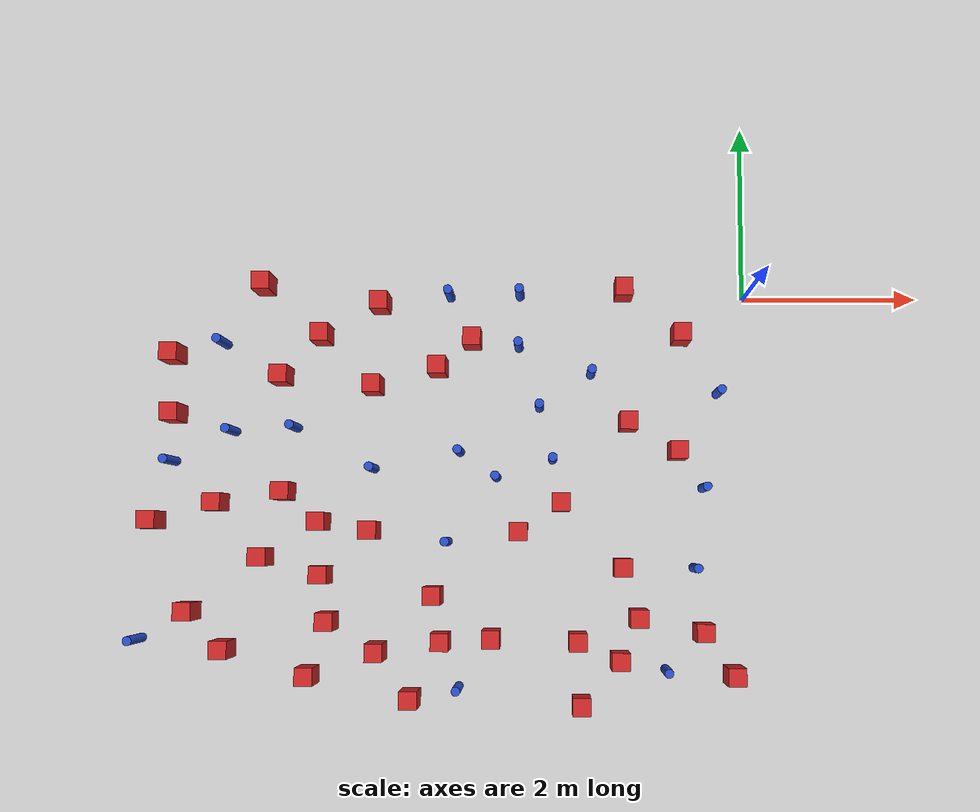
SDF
<sdf version="1.6">
 <world name="default">
  <model name="ground_plane">
   <static>1</static>
   <link name="link">
    <collision name="collision">
     <geometry><plane><normal>0 0 1</normal><size>100 100</size></plane></geometry>
     <surface><friction><ode><mu>100</mu><mu2>50</mu2></ode></friction></surface>
    </collision>
    <visual name="visual">
     <cast_shadows>0</cast_shadows>
     <geometry><plane><normal>0 0 1</normal><size>100 100</size></plane></geometry>
     <material>
      <ambient>1.0 1.0 1.0 1.0</ambient>
      <diffuse>0.8 0.8 0.8 1.0</diffuse>
      <specular>0.01 0.01 0.01 1.000000</specular>
     </material>
    </visual>
   </link>
  </model>
  <model name="NamedLocations">
   <static>true</static>
   <link name="DefaultStart"><pose>8.5 0 0 0 0 3.14</pose></link>
  </model>
  <model name="square_post_obstacle1">
   <static>true</static>
   <pose>-4.81381183244 -0.451501283735 1.91545236811e-07 -7.35059704564e-06 1.12565212e-07 2.39332434364e-05</pose>
   <link name="link">
    <pose>0 0 0.25 0 -0 0</pose>
    <inertial>
     <mass>100</mass>
     <inertia>
      <ixx>0.166667</ixx>
      <ixy>0</ixy>
      <ixz>0</ixz>
      <iyy>0.166667</iyy>
      <iyz>0</iyz>
      <izz>0.166667</izz>
     </inertia>
    </inertial>
    <collision name="collision"><geometry><box><size>.2 .2 .5</size></box></geometry></collision>
    <visual name="visual">
     <geometry><box><size>.2 .2 .5</size></box></geometry>
     <material>
      <script><name>Gazebo/Red</name><uri>file://media/materials/scripts/gazebo.material</uri></script>
     </material>
    </visual>
   </link>
  </model>
  <model name="square_post_obstacle3">
   <static>true</static>
   <pose>-3.5253935339 -3.39183684715 1.91545236811e-07 -7.35059704564e-06 1.12565212e-07 2.39332434364e-05</pose>
   <link name="link">
    <pose>0 0 0.25 0 -0 0</pose>
    <inertial>
     <mass>100</mass>
     <inertia>
      <ixx>0.166667</ixx>
      <ixy>0</ixy>
      <ixz>0</ixz>
      <iyy>0.166667</iyy>
      <iyz>0</iyz>
      <izz>0.166667</izz>
     </inertia>
    </inertial>
    <collision name="collision"><geometry><box><size>.2 .2 .5</size></box></geometry></collision>
    <visual name="visual">
     <geometry><box><size>.2 .2 .5</size></box></geometry>
     <material>
      <script><name>Gazebo/Red</name><uri>file://media/materials/scripts/gazebo.material</uri></script>
     </material>
    </visual>
   </link>
  </model>
  <model name="pole_obstacle12">
   <static>true</static>
   <pose>-5.93683408463 -0.54117805944 7.38925637345e-09 -8.47170692798e-08 1.24976765005e-08 -1.74513093021e-07</pose>
   <link name="link">
    <pose>0 0 0.3 0 -0 0</pose>
    <inertial>
     <mass>1</mass>
     <inertia><ixx>0.145833</ixx><ixy>0</ixy><ixz>0</ixz><iyy>0.145833</iyy><iyz>0</iyz><izz>0.125</izz></inertia>
    </inertial>
    <collision name="collision">
     <geometry><cylinder><radius>0.05</radius><length>.6</length></cylinder></geometry>
    </collision>
    <visual name="visual">
     <geometry><cylinder><radius>0.05</radius><length>.6</length></cylinder></geometry>
     <material>
      <script><name>Gazebo/Blue</name><uri>file://media/materials/scripts/gazebo.material</uri></script>
     </material>
    </visual>
   </link>
  </model>
  <model name="pole_obstacle16">
   <static>true</static>
   <pose>-2.56639658643 0.0287213058173 7.38925637345e-09 -8.47170692793e-08 1.24976764457e-08 -1.74513093039e-07</pose>
   <link name="link">
    <pose>0 0 0.3 0 -0 0</pose>
    <inertial>
     <mass>1</mass>
     <inertia><ixx>0.145833</ixx><ixy>0</ixy><ixz>0</ixz><iyy>0.145833</iyy><iyz>0</iyz><izz>0.125</izz></inertia>
    </inertial>
    <collision name="collision">
     <geometry><cylinder><radius>0.05</radius><length>.6</length></cylinder></geometry>
    </collision>
    <visual name="visual">
     <geometry><cylinder><radius>0.05</radius><length>.6</length></cylinder></geometry>
     <material>
      <script><name>Gazebo/Blue</name><uri>file://media/materials/scripts/gazebo.material</uri></script>
     </material>
    </visual>
   </link>
  </model>
  <model name="square_post_obstacle13">
   <static>true</static>
   <pose>-4.24430106662 -2.66834817036 1.91545236811e-07 -7.35059704564e-06 1.12565212e-07 2.39332434364e-05</pose>
   <link name="link">
    <pose>0 0 0.25 0 -0 0</pose>
    <inertial>
     <mass>100</mass>
     <inertia>
      <ixx>0.166667</ixx>
      <ixy>0</ixy>
      <ixz>0</ixz>
      <iyy>0.166667</iyy>
      <iyz>0</iyz>
      <izz>0.166667</izz>
     </inertia>
    </inertial>
    <collision name="collision"><geometry><box><size>.2 .2 .5</size></box></geometry></collision>
    <visual name="visual">
     <geometry><box><size>.2 .2 .5</size></box></geometry>
     <material>
      <script><name>Gazebo/Red</name><uri>file://media/materials/scripts/gazebo.material</uri></script>
     </material>
    </visual>
   </link>
  </model>
  <model name="pole_obstacle19">
   <static>true</static>
   <pose>-1.75111806579 -0.878984291902 7.38925637345e-09 -8.47170692799e-08 1.24976765075e-08 -1.74513093017e-07</pose>
   <link name="link">
    <pose>0 0 0.3 0 -0 0</pose>
    <inertial>
     <mass>1</mass>
     <inertia><ixx>0.145833</ixx><ixy>0</ixy><ixz>0</ixz><iyy>0.145833</iyy><iyz>0</iyz><izz>0.125</izz></inertia>
    </inertial>
    <collision name="collision">
     <geometry><cylinder><radius>0.05</radius><length>.6</length></cylinder></geometry>
    </collision>
    <visual name="visual">
     <geometry><cylinder><radius>0.05</radius><length>.6</length></cylinder></geometry>
     <material>
      <script><name>Gazebo/Blue</name><uri>file://media/materials/scripts/gazebo.material</uri></script>
     </material>
    </visual>
   </link>
  </model>
  <model name="square_post_obstacle25">
   <static>true</static>
   <pose>-4.2230417161 -1.03013316784 1.91545236811e-07 -7.35059704564e-06 1.12565212e-07 2.39332434364e-05</pose>
   <link name="link">
    <pose>0 0 0.25 0 -0 0</pose>
    <inertial>
     <mass>100</mass>
     <inertia>
      <ixx>0.166667</ixx>
      <ixy>0</ixy>
      <ixz>0</ixz>
      <iyy>0.166667</iyy>
      <iyz>0</iyz>
      <izz>0.166667</izz>
     </inertia>
    </inertial>
    <collision name="collision"><geometry><box><size>.2 .2 .5</size></box></geometry></collision>
    <visual name="visual">
     <geometry><box><size>.2 .2 .5</size></box></geometry>
     <material>
      <script><name>Gazebo/Red</name><uri>file://media/materials/scripts/gazebo.material</uri></script>
     </material>
    </visual>
   </link>
  </model>
  <model name="pole_obstacle38">
   <static>true</static>
   <pose>-3.36488434788 0.0128396563403 7.38925637345e-09 -8.471706928e-08 1.24976765123e-08 -1.74513093015e-07</pose>
   <link name="link">
    <pose>0 0 0.3 0 -0 0</pose>
    <inertial>
     <mass>1</mass>
     <inertia><ixx>0.145833</ixx><ixy>0</ixy><ixz>0</ixz><iyy>0.145833</iyy><iyz>0</iyz><izz>0.125</izz></inertia>
    </inertial>
    <collision name="collision">
     <geometry><cylinder><radius>0.05</radius><length>.6</length></cylinder></geometry>
    </collision>
    <visual name="visual">
     <geometry><cylinder><radius>0.05</radius><length>.6</length></cylinder></geometry>
     <material>
      <script><name>Gazebo/Blue</name><uri>file://media/materials/scripts/gazebo.material</uri></script>
     </material>
    </visual>
   </link>
  </model>
  <model name="square_post_obstacle32">
   <static>true</static>
   <pose>-0.733675001921 -0.444159728703 1.91545236811e-07 -7.35059704564e-06 1.12565212e-07 2.39332434364e-05</pose>
   <link name="link">
    <pose>0 0 0.25 0 -0 0</pose>
    <inertial>
     <mass>100</mass>
     <inertia>
      <ixx>0.166667</ixx>
      <ixy>0</ixy>
      <ixz>0</ixz>
      <iyy>0.166667</iyy>
      <iyz>0</iyz>
      <izz>0.166667</izz>
     </inertia>
    </inertial>
    <collision name="collision"><geometry><box><size>.2 .2 .5</size></box></geometry></collision>
    <visual name="visual">
     <geometry><box><size>.2 .2 .5</size></box></geometry>
     <material>
      <script><name>Gazebo/Red</name><uri>file://media/materials/scripts/gazebo.material</uri></script>
     </material>
    </visual>
   </link>
  </model>
  <model name="square_post_obstacle34">
   <static>true</static>
   <pose>-4.78245445662 -3.16348030652 1.91545236811e-07 -7.35059704564e-06 1.12565212e-07 2.39332434364e-05</pose>
   <link name="link">
    <pose>0 0 0.25 0 -0 0</pose>
    <inertial>
     <mass>100</mass>
     <inertia>
      <ixx>0.166667</ixx>
      <ixy>0</ixy>
      <ixz>0</ixz>
      <iyy>0.166667</iyy>
      <iyz>0</iyz>
      <izz>0.166667</izz>
     </inertia>
    </inertial>
    <collision name="collision"><geometry><box><size>.2 .2 .5</size></box></geometry></collision>
    <visual name="visual">
     <geometry><box><size>.2 .2 .5</size></box></geometry>
     <material>
      <script><name>Gazebo/Red</name><uri>file://media/materials/scripts/gazebo.material</uri></script>
     </material>
    </visual>
   </link>
  </model>
  <model name="pole_obstacle43">
   <static>true</static>
   <pose>-6.82482657903 -3.8784443002 7.38925637345e-09 -8.47170692798e-08 1.24976764937e-08 -1.74513093023e-07</pose>
   <link name="link">
    <pose>0 0 0.3 0 -0 0</pose>
    <inertial>
     <mass>1</mass>
     <inertia><ixx>0.145833</ixx><ixy>0</ixy><ixz>0</ixz><iyy>0.145833</iyy><iyz>0</iyz><izz>0.125</izz></inertia>
    </inertial>
    <collision name="collision">
     <geometry><cylinder><radius>0.05</radius><length>.6</length></cylinder></geometry>
    </collision>
    <visual name="visual">
     <geometry><cylinder><radius>0.05</radius><length>.6</length></cylinder></geometry>
     <material>
      <script><name>Gazebo/Blue</name><uri>file://media/materials/scripts/gazebo.material</uri></script>
     </material>
    </visual>
   </link>
  </model>
  <model name="square_post_obstacle35">
   <static>true</static>
   <pose>-6.69601641022 -2.55612763993 1.91545236811e-07 -7.35059704564e-06 1.12565212e-07 2.39332434364e-05</pose>
   <link name="link">
    <pose>0 0 0.25 0 -0 0</pose>
    <inertial>
     <mass>100</mass>
     <inertia>
      <ixx>0.166667</ixx>
      <ixy>0</ixy>
      <ixz>0</ixz>
      <iyy>0.166667</iyy>
      <iyz>0</iyz>
      <izz>0.166667</izz>
     </inertia>
    </inertial>
    <collision name="collision"><geometry><box><size>.2 .2 .5</size></box></geometry></collision>
    <visual name="visual">
     <geometry><box><size>.2 .2 .5</size></box></geometry>
     <material>
      <script><name>Gazebo/Red</name><uri>file://media/materials/scripts/gazebo.material</uri></script>
     </material>
    </visual>
   </link>
  </model>
  <model name="square_post_obstacle41">
   <static>true</static>
   <pose>-4.91532366861 -4.27377275956 1.91545236811e-07 -7.35059704564e-06 1.12565212e-07 2.39332434364e-05</pose>
   <link name="link">
    <pose>0 0 0.25 0 -0 0</pose>
    <inertial>
     <mass>100</mass>
     <inertia>
      <ixx>0.166667</ixx>
      <ixy>0</ixy>
      <ixz>0</ixz>
      <iyy>0.166667</iyy>
      <iyz>0</iyz>
      <izz>0.166667</izz>
     </inertia>
    </inertial>
    <collision name="collision"><geometry><box><size>.2 .2 .5</size></box></geometry></collision>
    <visual name="visual">
     <geometry><box><size>.2 .2 .5</size></box></geometry>
     <material>
      <script><name>Gazebo/Red</name><uri>file://media/materials/scripts/gazebo.material</uri></script>
     </material>
    </visual>
   </link>
  </model>
  <model name="square_post_obstacle43">
   <static>true</static>
   <pose>-1.90520034178 -3.89452841752 1.91545236811e-07 -7.35059704564e-06 1.12565212e-07 2.39332434364e-05</pose>
   <link name="link">
    <pose>0 0 0.25 0 -0 0</pose>
    <inertial>
     <mass>100</mass>
     <inertia>
      <ixx>0.166667</ixx>
      <ixy>0</ixy>
      <ixz>0</ixz>
      <iyy>0.166667</iyy>
      <iyz>0</iyz>
      <izz>0.166667</izz>
     </inertia>
    </inertial>
    <collision name="collision"><geometry><box><size>.2 .2 .5</size></box></geometry></collision>
    <visual name="visual">
     <geometry><box><size>.2 .2 .5</size></box></geometry>
     <material>
      <script><name>Gazebo/Red</name><uri>file://media/materials/scripts/gazebo.material</uri></script>
     </material>
    </visual>
   </link>
  </model>
  <model name="square_post_obstacle46">
   <static>true</static>
   <pose>-6.47988508888 -1.34973627015 1.91545236811e-07 -7.35059704564e-06 1.12565212e-07 2.39332434364e-05</pose>
   <link name="link">
    <pose>0 0 0.25 0 -0 0</pose>
    <inertial>
     <mass>100</mass>
     <inertia>
      <ixx>0.166667</ixx>
      <ixy>0</ixy>
      <ixz>0</ixz>
      <iyy>0.166667</iyy>
      <iyz>0</iyz>
      <izz>0.166667</izz>
     </inertia>
    </inertial>
    <collision name="collision"><geometry><box><size>.2 .2 .5</size></box></geometry></collision>
    <visual name="visual">
     <geometry><box><size>.2 .2 .5</size></box></geometry>
     <material>
      <script><name>Gazebo/Red</name><uri>file://media/materials/scripts/gazebo.material</uri></script>
     </material>
    </visual>
   </link>
  </model>
  <model name="square_post_obstacle52">
   <static>true</static>
   <pose>-1.40285618514 -3.07613207481 1.91545236811e-07 -7.35059704564e-06 1.12565212e-07 2.39332434364e-05</pose>
   <link name="link">
    <pose>0 0 0.25 0 -0 0</pose>
    <inertial>
     <mass>100</mass>
     <inertia>
      <ixx>0.166667</ixx>
      <ixy>0</ixy>
      <ixz>0</ixz>
      <iyy>0.166667</iyy>
      <iyz>0</iyz>
      <izz>0.166667</izz>
     </inertia>
    </inertial>
    <collision name="collision"><geometry><box><size>.2 .2 .5</size></box></geometry></collision>
    <visual name="visual">
     <geometry><box><size>.2 .2 .5</size></box></geometry>
     <material>
      <script><name>Gazebo/Red</name><uri>file://media/materials/scripts/gazebo.material</uri></script>
     </material>
    </visual>
   </link>
  </model>
  <model name="square_post_obstacle57">
   <static>true</static>
   <pose>-6.26776433679 -3.56865293948 1.91545236811e-07 -7.35059704564e-06 1.12565212e-07 2.39332434364e-05</pose>
   <link name="link">
    <pose>0 0 0.25 0 -0 0</pose>
    <inertial>
     <mass>100</mass>
     <inertia>
      <ixx>0.166667</ixx>
      <ixy>0</ixy>
      <ixz>0</ixz>
      <iyy>0.166667</iyy>
      <iyz>0</iyz>
      <izz>0.166667</izz>
     </inertia>
    </inertial>
    <collision name="collision"><geometry><box><size>.2 .2 .5</size></box></geometry></collision>
    <visual name="visual">
     <geometry><box><size>.2 .2 .5</size></box></geometry>
     <material>
      <script><name>Gazebo/Red</name><uri>file://media/materials/scripts/gazebo.material</uri></script>
     </material>
    </visual>
   </link>
  </model>
  <model name="square_post_obstacle60">
   <static>true</static>
   <pose>-4.70691668084 -3.6769379549 1.91545236811e-07 -7.35059704564e-06 1.12565212e-07 2.39332434364e-05</pose>
   <link name="link">
    <pose>0 0 0.25 0 -0 0</pose>
    <inertial>
     <mass>100</mass>
     <inertia>
      <ixx>0.166667</ixx>
      <ixy>0</ixy>
      <ixz>0</ixz>
      <iyy>0.166667</iyy>
      <iyz>0</iyz>
      <izz>0.166667</izz>
     </inertia>
    </inertial>
    <collision name="collision"><geometry><box><size>.2 .2 .5</size></box></geometry></collision>
    <visual name="visual">
     <geometry><box><size>.2 .2 .5</size></box></geometry>
     <material>
      <script><name>Gazebo/Red</name><uri>file://media/materials/scripts/gazebo.material</uri></script>
     </material>
    </visual>
   </link>
  </model>
  <model name="square_post_obstacle61">
   <static>true</static>
   <pose>-5.22219581214 -2.22930314461 1.91545236811e-07 -7.35059704564e-06 1.12565212e-07 2.39332434364e-05</pose>
   <link name="link">
    <pose>0 0 0.25 0 -0 0</pose>
    <inertial>
     <mass>100</mass>
     <inertia>
      <ixx>0.166667</ixx>
      <ixy>0</ixy>
      <ixz>0</ixz>
      <iyy>0.166667</iyy>
      <iyz>0</iyz>
      <izz>0.166667</izz>
     </inertia>
    </inertial>
    <collision name="collision"><geometry><box><size>.2 .2 .5</size></box></geometry></collision>
    <visual name="visual">
     <geometry><box><size>.2 .2 .5</size></box></geometry>
     <material>
      <script><name>Gazebo/Red</name><uri>file://media/materials/scripts/gazebo.material</uri></script>
     </material>
    </visual>
   </link>
  </model>
  <model name="pole_obstacle74">
   <static>true</static>
   <pose>-0.480352493039 -2.18078009373 7.38925637345e-09 -8.471706928e-08 1.24976765163e-08 -1.74513093012e-07</pose>
   <link name="link">
    <pose>0 0 0.3 0 -0 0</pose>
    <inertial>
     <mass>1</mass>
     <inertia><ixx>0.145833</ixx><ixy>0</ixy><ixz>0</ixz><iyy>0.145833</iyy><iyz>0</iyz><izz>0.125</izz></inertia>
    </inertial>
    <collision name="collision">
     <geometry><cylinder><radius>0.05</radius><length>.6</length></cylinder></geometry>
    </collision>
    <visual name="visual">
     <geometry><cylinder><radius>0.05</radius><length>.6</length></cylinder></geometry>
     <material>
      <script><name>Gazebo/Blue</name><uri>file://media/materials/scripts/gazebo.material</uri></script>
     </material>
    </visual>
   </link>
  </model>
  <model name="pole_obstacle75">
   <static>true</static>
   <pose>-2.82443525989 -2.06414414607 7.38925637345e-09 -8.47170692798e-08 1.24976764939e-08 -1.74513093025e-07</pose>
   <link name="link">
    <pose>0 0 0.3 0 -0 0</pose>
    <inertial>
     <mass>1</mass>
     <inertia><ixx>0.145833</ixx><ixy>0</ixy><ixz>0</ixz><iyy>0.145833</iyy><iyz>0</iyz><izz>0.125</izz></inertia>
    </inertial>
    <collision name="collision">
     <geometry><cylinder><radius>0.05</radius><length>.6</length></cylinder></geometry>
    </collision>
    <visual name="visual">
     <geometry><cylinder><radius>0.05</radius><length>.6</length></cylinder></geometry>
     <material>
      <script><name>Gazebo/Blue</name><uri>file://media/materials/scripts/gazebo.material</uri></script>
     </material>
    </visual>
   </link>
  </model>
  <model name="square_post_obstacle65">
   <static>true</static>
   <pose>-6.50383367135 -0.672173066415 1.91545236811e-07 -7.35059704564e-06 1.12565212e-07 2.39332434364e-05</pose>
   <link name="link">
    <pose>0 0 0.25 0 -0 0</pose>
    <inertial>
     <mass>100</mass>
     <inertia>
      <ixx>0.166667</ixx>
      <ixy>0</ixy>
      <ixz>0</ixz>
      <iyy>0.166667</iyy>
      <iyz>0</iyz>
      <izz>0.166667</izz>
     </inertia>
    </inertial>
    <collision name="collision"><geometry><box><size>.2 .2 .5</size></box></geometry></collision>
    <visual name="visual">
     <geometry><box><size>.2 .2 .5</size></box></geometry>
     <material>
      <script><name>Gazebo/Red</name><uri>file://media/materials/scripts/gazebo.material</uri></script>
     </material>
    </visual>
   </link>
  </model>
  <model name="square_post_obstacle66">
   <static>true</static>
   <pose>-5.26754194051 -0.918653354714 1.91545236811e-07 -7.35059704564e-06 1.12565212e-07 2.39332434364e-05</pose>
   <link name="link">
    <pose>0 0 0.25 0 -0 0</pose>
    <inertial>
     <mass>100</mass>
     <inertia>
      <ixx>0.166667</ixx>
      <ixy>0</ixy>
      <ixz>0</ixz>
      <iyy>0.166667</iyy>
      <iyz>0</iyz>
      <izz>0.166667</izz>
     </inertia>
    </inertial>
    <collision name="collision"><geometry><box><size>.2 .2 .5</size></box></geometry></collision>
    <visual name="visual">
     <geometry><box><size>.2 .2 .5</size></box></geometry>
     <material>
      <script><name>Gazebo/Red</name><uri>file://media/materials/scripts/gazebo.material</uri></script>
     </material>
    </visual>
   </link>
  </model>
  <model name="square_post_obstacle68">
   <static>true</static>
   <pose>-1.33434548001 -1.4416258403 1.91545236811e-07 -7.35059704564e-06 1.12565212e-07 2.39332434364e-05</pose>
   <link name="link">
    <pose>0 0 0.25 0 -0 0</pose>
    <inertial>
     <mass>100</mass>
     <inertia>
      <ixx>0.166667</ixx>
      <ixy>0</ixy>
      <ixz>0</ixz>
      <iyy>0.166667</iyy>
      <iyz>0</iyz>
      <izz>0.166667</izz>
     </inertia>
    </inertial>
    <collision name="collision"><geometry><box><size>.2 .2 .5</size></box></geometry></collision>
    <visual name="visual">
     <geometry><box><size>.2 .2 .5</size></box></geometry>
     <material>
      <script><name>Gazebo/Red</name><uri>file://media/materials/scripts/gazebo.material</uri></script>
     </material>
    </visual>
   </link>
  </model>
  <model name="pole_obstacle81">
   <static>true</static>
   <pose>-5.81388882325 -1.5460298857 7.38925637345e-09 -8.471706928e-08 1.24976765134e-08 -1.74513093015e-07</pose>
   <link name="link">
    <pose>0 0 0.3 0 -0 0</pose>
    <inertial>
     <mass>1</mass>
     <inertia><ixx>0.145833</ixx><ixy>0</ixy><ixz>0</ixz><iyy>0.145833</iyy><iyz>0</iyz><izz>0.125</izz></inertia>
    </inertial>
    <collision name="collision">
     <geometry><cylinder><radius>0.05</radius><length>.6</length></cylinder></geometry>
    </collision>
    <visual name="visual">
     <geometry><cylinder><radius>0.05</radius><length>.6</length></cylinder></geometry>
     <material>
      <script><name>Gazebo/Blue</name><uri>file://media/materials/scripts/gazebo.material</uri></script>
     </material>
    </visual>
   </link>
  </model>
  <model name="square_post_obstacle71">
   <static>true</static>
   <pose>-3.76809202697 -4.52620381001 1.91545236811e-07 -7.35059704564e-06 1.12565212e-07 2.39332434364e-05</pose>
   <link name="link">
    <pose>0 0 0.25 0 -0 0</pose>
    <inertial>
     <mass>100</mass>
     <inertia>
      <ixx>0.166667</ixx>
      <ixy>0</ixy>
      <ixz>0</ixz>
      <iyy>0.166667</iyy>
      <iyz>0</iyz>
      <izz>0.166667</izz>
     </inertia>
    </inertial>
    <collision name="collision"><geometry><box><size>.2 .2 .5</size></box></geometry></collision>
    <visual name="visual">
     <geometry><box><size>.2 .2 .5</size></box></geometry>
     <material>
      <script><name>Gazebo/Red</name><uri>file://media/materials/scripts/gazebo.material</uri></script>
     </material>
    </visual>
   </link>
  </model>
  <model name="square_post_obstacle80">
   <static>true</static>
   <pose>-3.49140370584 -0.81970347291 1.91545236811e-07 -7.35059704564e-06 1.12565212e-07 2.39332434364e-05</pose>
   <link name="link">
    <pose>0 0 0.25 0 -0 0</pose>
    <inertial>
     <mass>100</mass>
     <inertia>
      <ixx>0.166667</ixx>
      <ixy>0</ixy>
      <ixz>0</ixz>
      <iyy>0.166667</iyy>
      <iyz>0</iyz>
      <izz>0.166667</izz>
     </inertia>
    </inertial>
    <collision name="collision"><geometry><box><size>.2 .2 .5</size></box></geometry></collision>
    <visual name="visual">
     <geometry><box><size>.2 .2 .5</size></box></geometry>
     <material>
      <script><name>Gazebo/Red</name><uri>file://media/materials/scripts/gazebo.material</uri></script>
     </material>
    </visual>
   </link>
  </model>
  <model name="square_post_obstacle90">
   <static>true</static>
   <pose>-2.092584456 -2.35216601186 1.91545236811e-07 -7.35059704564e-06 1.12565212e-07 2.39332434364e-05</pose>
   <link name="link">
    <pose>0 0 0.25 0 -0 0</pose>
    <inertial>
     <mass>100</mass>
     <inertia>
      <ixx>0.166667</ixx>
      <ixy>0</ixy>
      <ixz>0</ixz>
      <iyy>0.166667</iyy>
      <iyz>0</iyz>
      <izz>0.166667</izz>
     </inertia>
    </inertial>
    <collision name="collision"><geometry><box><size>.2 .2 .5</size></box></geometry></collision>
    <visual name="visual">
     <geometry><box><size>.2 .2 .5</size></box></geometry>
     <material>
      <script><name>Gazebo/Red</name><uri>file://media/materials/scripts/gazebo.material</uri></script>
     </material>
    </visual>
   </link>
  </model>
  <model name="square_post_obstacle91">
   <static>true</static>
   <pose>-5.48784058473 0.133818143126 1.91545236811e-07 -7.35059704564e-06 1.12565212e-07 2.39332434364e-05</pose>
   <link name="link">
    <pose>0 0 0.25 0 -0 0</pose>
    <inertial>
     <mass>100</mass>
     <inertia>
      <ixx>0.166667</ixx>
      <ixy>0</ixy>
      <ixz>0</ixz>
      <iyy>0.166667</iyy>
      <iyz>0</iyz>
      <izz>0.166667</izz>
     </inertia>
    </inertial>
    <collision name="collision"><geometry><box><size>.2 .2 .5</size></box></geometry></collision>
    <visual name="visual">
     <geometry><box><size>.2 .2 .5</size></box></geometry>
     <material>
      <script><name>Gazebo/Red</name><uri>file://media/materials/scripts/gazebo.material</uri></script>
     </material>
    </visual>
   </link>
  </model>
  <model name="square_post_obstacle94">
   <static>true</static>
   <pose>-5.86187836172 -3.98562937326 1.91545236811e-07 -7.35059704564e-06 1.12565212e-07 2.39332434364e-05</pose>
   <link name="link">
    <pose>0 0 0.25 0 -0 0</pose>
    <inertial>
     <mass>100</mass>
     <inertia>
      <ixx>0.166667</ixx>
      <ixy>0</ixy>
      <ixz>0</ixz>
      <iyy>0.166667</iyy>
      <iyz>0</iyz>
      <izz>0.166667</izz>
     </inertia>
    </inertial>
    <collision name="collision"><geometry><box><size>.2 .2 .5</size></box></geometry></collision>
    <visual name="visual">
     <geometry><box><size>.2 .2 .5</size></box></geometry>
     <material>
      <script><name>Gazebo/Red</name><uri>file://media/materials/scripts/gazebo.material</uri></script>
     </material>
    </visual>
   </link>
  </model>
  <model name="square_post_obstacle97">
   <static>true</static>
   <pose>-0.158275001057 -4.2674720088 1.91545236811e-07 -7.35059704564e-06 1.12565212e-07 2.39332434364e-05</pose>
   <link name="link">
    <pose>0 0 0.25 0 -0 0</pose>
    <inertial>
     <mass>100</mass>
     <inertia>
      <ixx>0.166667</ixx>
      <ixy>0</ixy>
      <ixz>0</ixz>
      <iyy>0.166667</iyy>
      <iyz>0</iyz>
      <izz>0.166667</izz>
     </inertia>
    </inertial>
    <collision name="collision"><geometry><box><size>.2 .2 .5</size></box></geometry></collision>
    <visual name="visual">
     <geometry><box><size>.2 .2 .5</size></box></geometry>
     <material>
      <script><name>Gazebo/Red</name><uri>file://media/materials/scripts/gazebo.material</uri></script>
     </material>
    </visual>
   </link>
  </model>
  <model name="square_post_obstacle107">
   <static>true</static>
   <pose>-3.43156275861 -3.89534816327 1.91545236811e-07 -7.35059704564e-06 1.12565212e-07 2.39332434364e-05</pose>
   <link name="link">
    <pose>0 0 0.25 0 -0 0</pose>
    <inertial>
     <mass>100</mass>
     <inertia>
      <ixx>0.166667</ixx>
      <ixy>0</ixy>
      <ixz>0</ixz>
      <iyy>0.166667</iyy>
      <iyz>0</iyz>
      <izz>0.166667</izz>
     </inertia>
    </inertial>
    <collision name="collision"><geometry><box><size>.2 .2 .5</size></box></geometry></collision>
    <visual name="visual">
     <geometry><box><size>.2 .2 .5</size></box></geometry>
     <material>
      <script><name>Gazebo/Red</name><uri>file://media/materials/scripts/gazebo.material</uri></script>
     </material>
    </visual>
   </link>
  </model>
  <model name="pole_obstacle114">
   <static>true</static>
   <pose>-0.587315191651 -3.08101005053 7.38925637345e-09 -8.47170692799e-08 1.2497676509e-08 -1.74513093016e-07</pose>
   <link name="link">
    <pose>0 0 0.3 0 -0 0</pose>
    <inertial>
     <mass>1</mass>
     <inertia><ixx>0.145833</ixx><ixy>0</ixy><ixz>0</ixz><iyy>0.145833</iyy><iyz>0</iyz><izz>0.125</izz></inertia>
    </inertial>
    <collision name="collision">
     <geometry><cylinder><radius>0.05</radius><length>.6</length></cylinder></geometry>
    </collision>
    <visual name="visual">
     <geometry><cylinder><radius>0.05</radius><length>.6</length></cylinder></geometry>
     <material>
      <script><name>Gazebo/Blue</name><uri>file://media/materials/scripts/gazebo.material</uri></script>
     </material>
    </visual>
   </link>
  </model>
  <model name="pole_obstacle123">
   <static>true</static>
   <pose>-2.18743508959 -1.86031923877 7.38925637345e-09 -8.471706928e-08 1.24976765152e-08 -1.74513093012e-07</pose>
   <link name="link">
    <pose>0 0 0.3 0 -0 0</pose>
    <inertial>
     <mass>1</mass>
     <inertia><ixx>0.145833</ixx><ixy>0</ixy><ixz>0</ixz><iyy>0.145833</iyy><iyz>0</iyz><izz>0.125</izz></inertia>
    </inertial>
    <collision name="collision">
     <geometry><cylinder><radius>0.05</radius><length>.6</length></cylinder></geometry>
    </collision>
    <visual name="visual">
     <geometry><cylinder><radius>0.05</radius><length>.6</length></cylinder></geometry>
     <material>
      <script><name>Gazebo/Blue</name><uri>file://media/materials/scripts/gazebo.material</uri></script>
     </material>
    </visual>
   </link>
  </model>
  <model name="pole_obstacle128">
   <static>true</static>
   <pose>-0.913741077147 -4.21773670129 7.38925637345e-09 -8.471706928e-08 1.24976765086e-08 -1.74513093015e-07</pose>
   <link name="link">
    <pose>0 0 0.3 0 -0 0</pose>
    <inertial>
     <mass>1</mass>
     <inertia><ixx>0.145833</ixx><ixy>0</ixy><ixz>0</ixz><iyy>0.145833</iyy><iyz>0</iyz><izz>0.125</izz></inertia>
    </inertial>
    <collision name="collision">
     <geometry><cylinder><radius>0.05</radius><length>.6</length></cylinder></geometry>
    </collision>
    <visual name="visual">
     <geometry><cylinder><radius>0.05</radius><length>.6</length></cylinder></geometry>
     <material>
      <script><name>Gazebo/Blue</name><uri>file://media/materials/scripts/gazebo.material</uri></script>
     </material>
    </visual>
   </link>
  </model>
  <model name="square_post_obstacle134">
   <static>true</static>
   <pose>-3.10246668826 -0.500301110783 1.91545236811e-07 -7.35059704564e-06 1.12565212e-07 2.39332434364e-05</pose>
   <link name="link">
    <pose>0 0 0.25 0 -0 0</pose>
    <inertial>
     <mass>100</mass>
     <inertia>
      <ixx>0.166667</ixx>
      <ixy>0</ixy>
      <ixz>0</ixz>
      <iyy>0.166667</iyy>
      <iyz>0</iyz>
      <izz>0.166667</izz>
     </inertia>
    </inertial>
    <collision name="collision"><geometry><box><size>.2 .2 .5</size></box></geometry></collision>
    <visual name="visual">
     <geometry><box><size>.2 .2 .5</size></box></geometry>
     <material>
      <script><name>Gazebo/Red</name><uri>file://media/materials/scripts/gazebo.material</uri></script>
     </material>
    </visual>
   </link>
  </model>
  <model name="pole_obstacle141">
   <static>true</static>
   <pose>-0.309372491663 -1.10215364093 7.38925637345e-09 -8.47170692798e-08 1.24976765025e-08 -1.74513093018e-07</pose>
   <link name="link">
    <pose>0 0 0.3 0 -0 0</pose>
    <inertial>
     <mass>1</mass>
     <inertia><ixx>0.145833</ixx><ixy>0</ixy><ixz>0</ixz><iyy>0.145833</iyy><iyz>0</iyz><izz>0.125</izz></inertia>
    </inertial>
    <collision name="collision">
     <geometry><cylinder><radius>0.05</radius><length>.6</length></cylinder></geometry>
    </collision>
    <visual name="visual">
     <geometry><cylinder><radius>0.05</radius><length>.6</length></cylinder></geometry>
     <material>
      <script><name>Gazebo/Blue</name><uri>file://media/materials/scripts/gazebo.material</uri></script>
     </material>
    </visual>
   </link>
  </model>
  <model name="pole_obstacle145">
   <static>true</static>
   <pose>-3.37362764838 -2.79203365038 7.38925637345e-09 -8.47170692798e-08 1.24976764939e-08 -1.74513093025e-07</pose>
   <link name="link">
    <pose>0 0 0.3 0 -0 0</pose>
    <inertial>
     <mass>1</mass>
     <inertia><ixx>0.145833</ixx><ixy>0</ixy><ixz>0</ixz><iyy>0.145833</iyy><iyz>0</iyz><izz>0.125</izz></inertia>
    </inertial>
    <collision name="collision">
     <geometry><cylinder><radius>0.05</radius><length>.6</length></cylinder></geometry>
    </collision>
    <visual name="visual">
     <geometry><cylinder><radius>0.05</radius><length>.6</length></cylinder></geometry>
     <material>
      <script><name>Gazebo/Blue</name><uri>file://media/materials/scripts/gazebo.material</uri></script>
     </material>
    </visual>
   </link>
  </model>
  <model name="square_post_obstacle141">
   <static>true</static>
   <pose>-2.5688060676 -2.68019482341 1.91545236811e-07 -7.35059704564e-06 1.12565212e-07 2.39332434364e-05</pose>
   <link name="link">
    <pose>0 0 0.25 0 -0 0</pose>
    <inertial>
     <mass>100</mass>
     <inertia>
      <ixx>0.166667</ixx>
      <ixy>0</ixy>
      <ixz>0</ixz>
      <iyy>0.166667</iyy>
      <iyz>0</iyz>
      <izz>0.166667</izz>
     </inertia>
    </inertial>
    <collision name="collision"><geometry><box><size>.2 .2 .5</size></box></geometry></collision>
    <visual name="visual">
     <geometry><box><size>.2 .2 .5</size></box></geometry>
     <material>
      <script><name>Gazebo/Red</name><uri>file://media/materials/scripts/gazebo.material</uri></script>
     </material>
    </visual>
   </link>
  </model>
  <model name="pole_obstacle158">
   <static>true</static>
   <pose>-2.33746181789 -1.2664698036 7.38925637345e-09 -8.471706928e-08 1.24976765152e-08 -1.74513093012e-07</pose>
   <link name="link">
    <pose>0 0 0.3 0 -0 0</pose>
    <inertial>
     <mass>1</mass>
     <inertia><ixx>0.145833</ixx><ixy>0</ixy><ixz>0</ixz><iyy>0.145833</iyy><iyz>0</iyz><izz>0.125</izz></inertia>
    </inertial>
    <collision name="collision">
     <geometry><cylinder><radius>0.05</radius><length>.6</length></cylinder></geometry>
    </collision>
    <visual name="visual">
     <geometry><cylinder><radius>0.05</radius><length>.6</length></cylinder></geometry>
     <material>
      <script><name>Gazebo/Blue</name><uri>file://media/materials/scripts/gazebo.material</uri></script>
     </material>
    </visual>
   </link>
  </model>
  <model name="pole_obstacle161">
   <static>true</static>
   <pose>-6.49332828583 -1.88533693795 7.38925637345e-09 -8.471706928e-08 1.24976765134e-08 -1.74513093015e-07</pose>
   <link name="link">
    <pose>0 0 0.3 0 -0 0</pose>
    <inertial>
     <mass>1</mass>
     <inertia><ixx>0.145833</ixx><ixy>0</ixy><ixz>0</ixz><iyy>0.145833</iyy><iyz>0</iyz><izz>0.125</izz></inertia>
    </inertial>
    <collision name="collision">
     <geometry><cylinder><radius>0.05</radius><length>.6</length></cylinder></geometry>
    </collision>
    <visual name="visual">
     <geometry><cylinder><radius>0.05</radius><length>.6</length></cylinder></geometry>
     <material>
      <script><name>Gazebo/Blue</name><uri>file://media/materials/scripts/gazebo.material</uri></script>
     </material>
    </visual>
   </link>
  </model>
  <model name="pole_obstacle163">
   <static>true</static>
   <pose>-3.23797405642 -4.41303686302 7.38925637345e-09 -8.47170692798e-08 1.24976765033e-08 -1.74513093019e-07</pose>
   <link name="link">
    <pose>0 0 0.3 0 -0 0</pose>
    <inertial>
     <mass>1</mass>
     <inertia><ixx>0.145833</ixx><ixy>0</ixy><ixz>0</ixz><iyy>0.145833</iyy><iyz>0</iyz><izz>0.125</izz></inertia>
    </inertial>
    <collision name="collision">
     <geometry><cylinder><radius>0.05</radius><length>.6</length></cylinder></geometry>
    </collision>
    <visual name="visual">
     <geometry><cylinder><radius>0.05</radius><length>.6</length></cylinder></geometry>
     <material>
      <script><name>Gazebo/Blue</name><uri>file://media/materials/scripts/gazebo.material</uri></script>
     </material>
    </visual>
   </link>
  </model>
  <model name="square_post_obstacle157">
   <static>true</static>
   <pose>-1.22739272882 -3.63805518073 1.91545236811e-07 -7.35059704564e-06 1.12565212e-07 2.39332434364e-05</pose>
   <link name="link">
    <pose>0 0 0.25 0 -0 0</pose>
    <inertial>
     <mass>100</mass>
     <inertia>
      <ixx>0.166667</ixx>
      <ixy>0</ixy>
      <ixz>0</ixz>
      <iyy>0.166667</iyy>
      <iyz>0</iyz>
      <izz>0.166667</izz>
     </inertia>
    </inertial>
    <collision name="collision"><geometry><box><size>.2 .2 .5</size></box></geometry></collision>
    <visual name="visual">
     <geometry><box><size>.2 .2 .5</size></box></geometry>
     <material>
      <script><name>Gazebo/Red</name><uri>file://media/materials/scripts/gazebo.material</uri></script>
     </material>
    </visual>
   </link>
  </model>
  <model name="square_post_obstacle166">
   <static>true</static>
   <pose>-1.86438447055 -4.59509963623 1.91545236811e-07 -7.35059704564e-06 1.12565212e-07 2.39332434364e-05</pose>
   <link name="link">
    <pose>0 0 0.25 0 -0 0</pose>
    <inertial>
     <mass>100</mass>
     <inertia>
      <ixx>0.166667</ixx>
      <ixy>0</ixy>
      <ixz>0</ixz>
      <iyy>0.166667</iyy>
      <iyz>0</iyz>
      <izz>0.166667</izz>
     </inertia>
    </inertial>
    <collision name="collision"><geometry><box><size>.2 .2 .5</size></box></geometry></collision>
    <visual name="visual">
     <geometry><box><size>.2 .2 .5</size></box></geometry>
     <material>
      <script><name>Gazebo/Red</name><uri>file://media/materials/scripts/gazebo.material</uri></script>
     </material>
    </visual>
   </link>
  </model>
  <model name="square_post_obstacle168">
   <static>true</static>
   <pose>-5.45934289768 -2.96565414141 1.91545236811e-07 -7.35059704564e-06 1.12565212e-07 2.39332434364e-05</pose>
   <link name="link">
    <pose>0 0 0.25 0 -0 0</pose>
    <inertial>
     <mass>100</mass>
     <inertia>
      <ixx>0.166667</ixx>
      <ixy>0</ixy>
      <ixz>0</ixz>
      <iyy>0.166667</iyy>
      <iyz>0</iyz>
      <izz>0.166667</izz>
     </inertia>
    </inertial>
    <collision name="collision"><geometry><box><size>.2 .2 .5</size></box></geometry></collision>
    <visual name="visual">
     <geometry><box><size>.2 .2 .5</size></box></geometry>
     <material>
      <script><name>Gazebo/Red</name><uri>file://media/materials/scripts/gazebo.material</uri></script>
     </material>
    </visual>
   </link>
  </model>
  <model name="square_post_obstacle169">
   <static>true</static>
   <pose>-4.15453911683 -0.0858437743132 1.91545236811e-07 -7.35059704564e-06 1.12565212e-07 2.39332434364e-05</pose>
   <link name="link">
    <pose>0 0 0.25 0 -0 0</pose>
    <inertial>
     <mass>100</mass>
     <inertia>
      <ixx>0.166667</ixx>
      <ixy>0</ixy>
      <ixz>0</ixz>
      <iyy>0.166667</iyy>
      <iyz>0</iyz>
      <izz>0.166667</izz>
     </inertia>
    </inertial>
    <collision name="collision"><geometry><box><size>.2 .2 .5</size></box></geometry></collision>
    <visual name="visual">
     <geometry><box><size>.2 .2 .5</size></box></geometry>
     <material>
      <script><name>Gazebo/Red</name><uri>file://media/materials/scripts/gazebo.material</uri></script>
     </material>
    </visual>
   </link>
  </model>
  <model name="square_post_obstacle170">
   <static>true</static>
   <pose>-1.43194018927 -4.10699717031 1.91545236811e-07 -7.35059704564e-06 1.12565212e-07 2.39332434364e-05</pose>
   <link name="link">
    <pose>0 0 0.25 0 -0 0</pose>
    <inertial>
     <mass>100</mass>
     <inertia>
      <ixx>0.166667</ixx>
      <ixy>0</ixy>
      <ixz>0</ixz>
      <iyy>0.166667</iyy>
      <iyz>0</iyz>
      <izz>0.166667</izz>
     </inertia>
    </inertial>
    <collision name="collision"><geometry><box><size>.2 .2 .5</size></box></geometry></collision>
    <visual name="visual">
     <geometry><box><size>.2 .2 .5</size></box></geometry>
     <material>
      <script><name>Gazebo/Red</name><uri>file://media/materials/scripts/gazebo.material</uri></script>
     </material>
    </visual>
   </link>
  </model>
  <model name="square_post_obstacle175">
   <static>true</static>
   <pose>-4.8167430084 -2.57239034943 1.91545236811e-07 -7.35059704564e-06 1.12565212e-07 2.39332434364e-05</pose>
   <link name="link">
    <pose>0 0 0.25 0 -0 0</pose>
    <inertial>
     <mass>100</mass>
     <inertia>
      <ixx>0.166667</ixx>
      <ixy>0</ixy>
      <ixz>0</ixz>
      <iyy>0.166667</iyy>
      <iyz>0</iyz>
      <izz>0.166667</izz>
     </inertia>
    </inertial>
    <collision name="collision"><geometry><box><size>.2 .2 .5</size></box></geometry></collision>
    <visual name="visual">
     <geometry><box><size>.2 .2 .5</size></box></geometry>
     <material>
      <script><name>Gazebo/Red</name><uri>file://media/materials/scripts/gazebo.material</uri></script>
     </material>
    </visual>
   </link>
  </model>
  <model name="square_post_obstacle179">
   <static>true</static>
   <pose>-4.15378916535 -4.00980809994 1.91545236811e-07 -7.35059704564e-06 1.12565212e-07 2.39332434364e-05</pose>
   <link name="link">
    <pose>0 0 0.25 0 -0 0</pose>
    <inertial>
     <mass>100</mass>
     <inertia>
      <ixx>0.166667</ixx>
      <ixy>0</ixy>
      <ixz>0</ixz>
      <iyy>0.166667</iyy>
      <iyz>0</iyz>
      <izz>0.166667</izz>
     </inertia>
    </inertial>
    <collision name="collision"><geometry><box><size>.2 .2 .5</size></box></geometry></collision>
    <visual name="visual">
     <geometry><box><size>.2 .2 .5</size></box></geometry>
     <material>
      <script><name>Gazebo/Red</name><uri>file://media/materials/scripts/gazebo.material</uri></script>
     </material>
    </visual>
   </link>
  </model>
  <model name="square_post_obstacle184">
   <static>true</static>
   <pose>-1.38484862673 0.0717881552629 1.91545236811e-07 -7.35059704564e-06 1.12565212e-07 2.39332434364e-05</pose>
   <link name="link">
    <pose>0 0 0.25 0 -0 0</pose>
    <inertial>
     <mass>100</mass>
     <inertia>
      <ixx>0.166667</ixx>
      <ixy>0</ixy>
      <ixz>0</ixz>
      <iyy>0.166667</iyy>
      <iyz>0</iyz>
      <izz>0.166667</izz>
     </inertia>
    </inertial>
    <collision name="collision"><geometry><box><size>.2 .2 .5</size></box></geometry></collision>
    <visual name="visual">
     <geometry><box><size>.2 .2 .5</size></box></geometry>
     <material>
      <script><name>Gazebo/Red</name><uri>file://media/materials/scripts/gazebo.material</uri></script>
     </material>
    </visual>
   </link>
  </model>
  <model name="square_post_obstacle186">
   <static>true</static>
   <pose>-0.775690983602 -1.76602772092 1.91545236811e-07 -7.35059704564e-06 1.12565212e-07 2.39332434364e-05</pose>
   <link name="link">
    <pose>0 0 0.25 0 -0 0</pose>
    <inertial>
     <mass>100</mass>
     <inertia>
      <ixx>0.166667</ixx>
      <ixy>0</ixy>
      <ixz>0</ixz>
      <iyy>0.166667</iyy>
      <iyz>0</iyz>
      <izz>0.166667</izz>
     </inertia>
    </inertial>
    <collision name="collision"><geometry><box><size>.2 .2 .5</size></box></geometry></collision>
    <visual name="visual">
     <geometry><box><size>.2 .2 .5</size></box></geometry>
     <material>
      <script><name>Gazebo/Red</name><uri>file://media/materials/scripts/gazebo.material</uri></script>
     </material>
    </visual>
   </link>
  </model>
  <model name="square_post_obstacle202">
   <static>true</static>
   <pose>-2.86827626013 -3.8676467995 1.91545236811e-07 -7.35059704564e-06 1.12565212e-07 2.39332434364e-05</pose>
   <link name="link">
    <pose>0 0 0.25 0 -0 0</pose>
    <inertial>
     <mass>100</mass>
     <inertia>
      <ixx>0.166667</ixx>
      <ixy>0</ixy>
      <ixz>0</ixz>
      <iyy>0.166667</iyy>
      <iyz>0</iyz>
      <izz>0.166667</izz>
     </inertia>
    </inertial>
    <collision name="collision"><geometry><box><size>.2 .2 .5</size></box></geometry></collision>
    <visual name="visual">
     <geometry><box><size>.2 .2 .5</size></box></geometry>
     <material>
      <script><name>Gazebo/Red</name><uri>file://media/materials/scripts/gazebo.material</uri></script>
     </material>
    </visual>
   </link>
  </model>
  <model name="square_post_obstacle207">
   <static>true</static>
   <pose>-5.97715904609 -2.35607494437 1.91545236811e-07 -7.35059704564e-06 1.12565212e-07 2.39332434364e-05</pose>
   <link name="link">
    <pose>0 0 0.25 0 -0 0</pose>
    <inertial>
     <mass>100</mass>
     <inertia>
      <ixx>0.166667</ixx>
      <ixy>0</ixy>
      <ixz>0</ixz>
      <iyy>0.166667</iyy>
      <iyz>0</iyz>
      <izz>0.166667</izz>
     </inertia>
    </inertial>
    <collision name="collision"><geometry><box><size>.2 .2 .5</size></box></geometry></collision>
    <visual name="visual">
     <geometry><box><size>.2 .2 .5</size></box></geometry>
     <material>
      <script><name>Gazebo/Red</name><uri>file://media/materials/scripts/gazebo.material</uri></script>
     </material>
    </visual>
   </link>
  </model>
  <model name="pole_obstacle196">
   <static>true</static>
   <pose>-5.10656326146 -1.50329721866 7.38925637345e-09 -8.471706928e-08 1.24976765134e-08 -1.74513093015e-07</pose>
   <link name="link">
    <pose>0 0 0.3 0 -0 0</pose>
    <inertial>
     <mass>1</mass>
     <inertia><ixx>0.145833</ixx><ixy>0</ixy><ixz>0</ixz><iyy>0.145833</iyy><iyz>0</iyz><izz>0.125</izz></inertia>
    </inertial>
    <collision name="collision">
     <geometry><cylinder><radius>0.05</radius><length>.6</length></cylinder></geometry>
    </collision>
    <visual name="visual">
     <geometry><cylinder><radius>0.05</radius><length>.6</length></cylinder></geometry>
     <material>
      <script><name>Gazebo/Blue</name><uri>file://media/materials/scripts/gazebo.material</uri></script>
     </material>
    </visual>
   </link>
  </model>
  <model name="square_post_obstacle211">
   <static>true</static>
   <pose>-0.498590163746 -3.79110060652 1.91545236811e-07 -7.35059704564e-06 1.12565212e-07 2.39332434364e-05</pose>
   <link name="link">
    <pose>0 0 0.25 0 -0 0</pose>
    <inertial>
     <mass>100</mass>
     <inertia>
      <ixx>0.166667</ixx>
      <ixy>0</ixy>
      <ixz>0</ixz>
      <iyy>0.166667</iyy>
      <iyz>0</iyz>
      <izz>0.166667</izz>
     </inertia>
    </inertial>
    <collision name="collision"><geometry><box><size>.2 .2 .5</size></box></geometry></collision>
    <visual name="visual">
     <geometry><box><size>.2 .2 .5</size></box></geometry>
     <material>
      <script><name>Gazebo/Red</name><uri>file://media/materials/scripts/gazebo.material</uri></script>
     </material>
    </visual>
   </link>
  </model>
  <model name="pole_obstacle221">
   <static>true</static>
   <pose>-2.57623926757 -0.571800773026 7.38925637345e-09 -8.471706928e-08 1.24976765177e-08 -1.74513093012e-07</pose>
   <link name="link">
    <pose>0 0 0.3 0 -0 0</pose>
    <inertial>
     <mass>1</mass>
     <inertia><ixx>0.145833</ixx><ixy>0</ixy><ixz>0</ixz><iyy>0.145833</iyy><iyz>0</iyz><izz>0.125</izz></inertia>
    </inertial>
    <collision name="collision">
     <geometry><cylinder><radius>0.05</radius><length>.6</length></cylinder></geometry>
    </collision>
    <visual name="visual">
     <geometry><cylinder><radius>0.05</radius><length>.6</length></cylinder></geometry>
     <material>
      <script><name>Gazebo/Blue</name><uri>file://media/materials/scripts/gazebo.material</uri></script>
     </material>
    </visual>
   </link>
  </model>
  <model name="pole_obstacle222">
   <static>true</static>
   <pose>-4.21956017419 -1.96731476309 7.38925637345e-09 -8.47170692801e-08 1.24976765219e-08 -1.74513093009e-07</pose>
   <link name="link">
    <pose>0 0 0.3 0 -0 0</pose>
    <inertial>
     <mass>1</mass>
     <inertia><ixx>0.145833</ixx><ixy>0</ixy><ixz>0</ixz><iyy>0.145833</iyy><iyz>0</iyz><izz>0.125</izz></inertia>
    </inertial>
    <collision name="collision">
     <geometry><cylinder><radius>0.05</radius><length>.6</length></cylinder></geometry>
    </collision>
    <visual name="visual">
     <geometry><cylinder><radius>0.05</radius><length>.6</length></cylinder></geometry>
     <material>
      <script><name>Gazebo/Blue</name><uri>file://media/materials/scripts/gazebo.material</uri></script>
     </material>
    </visual>
   </link>
  </model>
  <model name="pole_obstacle238">
   <static>true</static>
   <pose>-3.24406999043 -1.77587997922 7.38925637345e-09 -8.471706928e-08 1.24976765152e-08 -1.74513093012e-07</pose>
   <link name="link">
    <pose>0 0 0.3 0 -0 0</pose>
    <inertial>
     <mass>1</mass>
     <inertia><ixx>0.145833</ixx><ixy>0</ixy><ixz>0</ixz><iyy>0.145833</iyy><iyz>0</iyz><izz>0.125</izz></inertia>
    </inertial>
    <collision name="collision">
     <geometry><cylinder><radius>0.05</radius><length>.6</length></cylinder></geometry>
    </collision>
    <visual name="visual">
     <geometry><cylinder><radius>0.05</radius><length>.6</length></cylinder></geometry>
     <material>
      <script><name>Gazebo/Blue</name><uri>file://media/materials/scripts/gazebo.material</uri></script>
     </material>
    </visual>
   </link>
  </model>
 </world>
</sdf>
